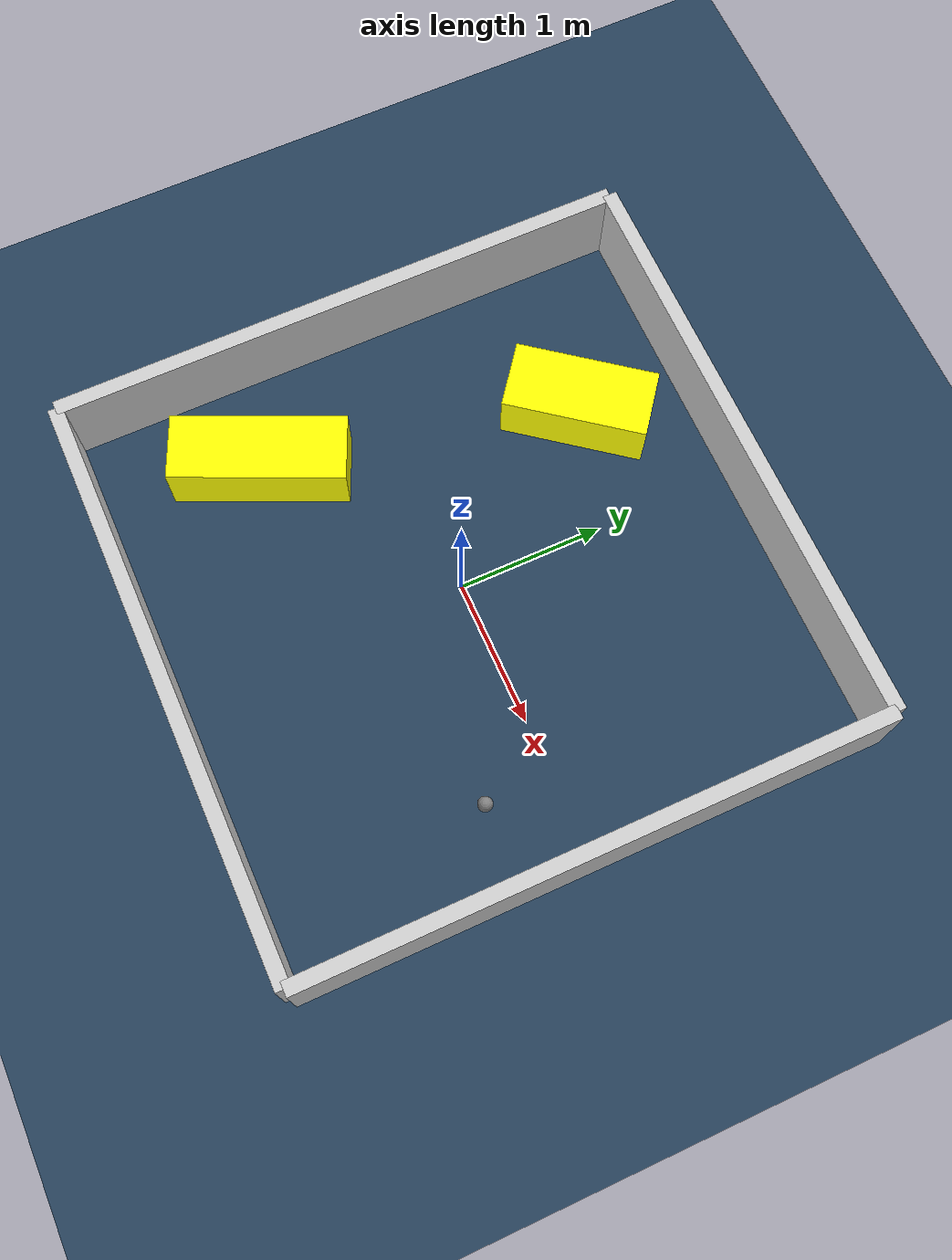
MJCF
<?xml version="1.0" ?>
<mujoco model="generated_environment">
  <option timestep="0.01" integrator="RK4" cone="elliptic"/>
  <default>
    <geom density="1"/>
  </default>
  <asset>
    <texture builtin="gradient" height="3072" rgb1="0.3 0.5 0.7" rgb2="0 0 0" type="skybox" width="512"/>
    <texture builtin="checker" height="300" mark="edge" markrgb="0.8 0.8 0.8" name="groundplane" rgb1="0.2 0.3 0.4" rgb2="0.1 0.2 0.3" type="2d" width="300"/>
    <material name="groundplane" reflectance="0.2" texrepeat="5 5" texture="groundplane" texuniform="true"/>
    <material name="robot" rgba="0.0 1.0 0.0 1"/>
  </asset>
  <worldbody>
    <light dir="0 0 -1" directional="true" pos="0 0 1.5"/>
    <geom condim="4" friction="1.0 0.005 0.001" material="groundplane" name="floor" size="0 0 0.05" type="plane"/>
    <body name="walls">
      <geom name="wall_1" condim="4" pos="-2.0 0.0 0.3" rgba="0.800000011920929 0.800000011920929 0.800000011920929 1.0" size="0.05 2.0 0.3" type="box"/>
      <geom name="wall_2" condim="4" pos="2.0 0.0 0.3" rgba="0.800000011920929 0.800000011920929 0.800000011920929 1.0" size="0.05 2.0 0.3" type="box"/>
      <geom name="wall_3" condim="4" pos="0.0 -2.0 0.3" rgba="0.800000011920929 0.800000011920929 0.800000011920929 1.0" size="2.0 0.05 0.3" type="box"/>
      <geom name="wall_4" condim="4" pos="0.0 2.0 0.3" rgba="0.800000011920929 0.800000011920929 0.800000011920929 1.0" size="2.0 0.05 0.3" type="box"/>
    </body>
    <body name="robot">
      <joint name="joint_x" type="slide" pos="0 0 0" axis="1 0 0"/>
      <joint name="joint_y" type="slide" pos="0 0 0" axis="0 1 0"/>
      <geom name="robot" type="sphere" pos="1.4248700350703625 -0.4767177144780814 0.2" size="0.05" mass="5." friction="1.0 0.005 0.0001" condim="4"/>
      <site name="sensor_ball"/>
    </body>
    <body name="obstacle_1_movable">
      <geom name="obstacle_1_movable" condim="4" pos="-1.3101034967246983 -0.8871016519034459 0.2" euler="0 0 155.91576295518328" friction="1.0 0.005 0.001" rgba="1 1 0 1" size="0.22195063811918003 0.5902893844747173 0.2" type="box" mass="0.1"/>
      <joint type="free"/>
    </body>
    <body name="obstacle_2_movable">
      <geom name="obstacle_2_movable" condim="4" pos="-0.8266234989028982 1.238256165011086 0.2" euler="0 0 142.5026813025116" friction="1.0 0.005 0.001" rgba="1 1 0 1" size="0.2313179230448156 0.4905777331527763 0.2" type="box" mass="0.1"/>
      <joint type="free"/>
    </body>
  </worldbody>
  <actuator>
    <motor name="actuator_x" joint="joint_x" gear="1" ctrlrange="-1 1"/>
    <motor name="actuator_y" joint="joint_y" gear="1" ctrlrange="-1 1"/>
  </actuator>
</mujoco>
